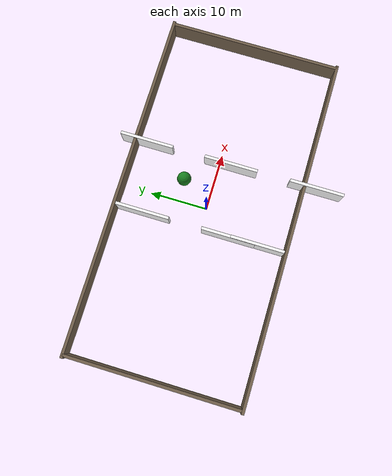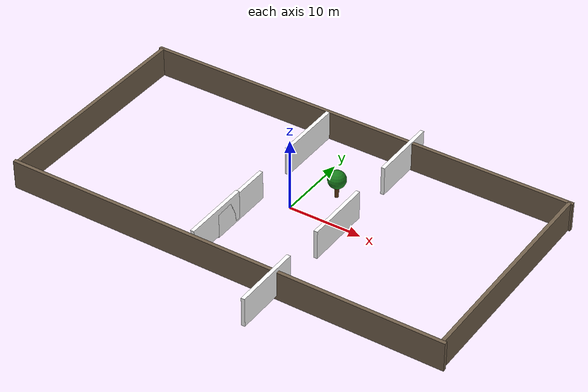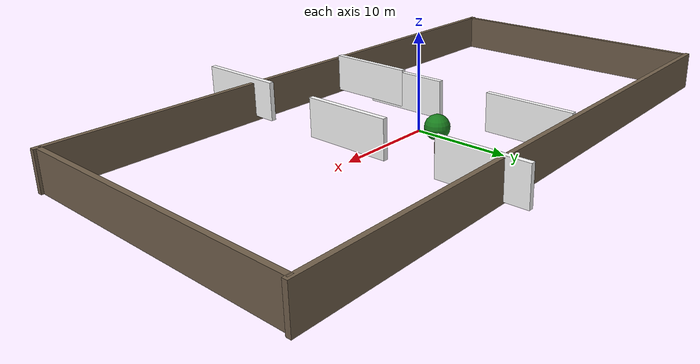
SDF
<sdf version="1.8">
 <world name="custom_terrain_world">
  <light name="sun" type="directional">
   <cast_shadows>0</cast_shadows>
   <pose>0 0 100 0 -0 0</pose>
   <diffuse>0.8 0.8 0.8 1</diffuse>
   <specular>0.4 0.4 0.4 1</specular>
   <direction>-0.5 0.1 -0.9</direction>
  </light>
  <gravity>0 0 -9.81</gravity>
  <magnetic_field>6e-06 2.3e-05 -4.2e-05</magnetic_field>
  <atmosphere type="adiabatic"/>
  <physics name="default_physics" type="ignored">
   <max_step_size>0.01</max_step_size>
   <real_time_factor>1</real_time_factor>
   <real_time_update_rate>100</real_time_update_rate>
  </physics>
  <scene>
   <ambient>0.7 0.7 0.7 1</ambient>
   <background>0.6 0.8 1.0 1</background>
   <shadows>0</shadows>
   <grid>0</grid>
  </scene>
  <spherical_coordinates>
   <latitude_deg>0.0</latitude_deg>
   <longitude_deg>0.0</longitude_deg>
   <elevation>10.0</elevation>
   <heading_deg>0</heading_deg>
   <surface_model>EARTH_WGS84</surface_model>
  </spherical_coordinates>
  <include><uri>model://map_perimeter</uri><name>map_perimeter</name></include>
  <include>
   <uri>model://forest_wall</uri>
   <name>forest_wall_1</name>
   <pose>-4 10 0.14 0 0 1.570796</pose>
  </include>
  <include>
   <uri>model://forest_wall</uri>
   <name>forest_wall_2</name>
   <pose>-4 -5 0.123 0 0 1.570796</pose>
  </include>
  <include>
   <uri>model://forest_wall</uri>
   <name>forest_wall_3</name>
   <pose>-4 -10 0.344 0 0 1.570796</pose>
  </include>
  <include>
   <uri>model://forest_wall</uri>
   <name>forest_wall_4</name>
   <pose>8 13 0.181 0 0 1.570796</pose>
  </include>
  <include>
   <uri>model://forest_wall</uri>
   <name>forest_wall_5</name>
   <pose>8 -2 0.248 0 0 1.570796</pose>
  </include>
  <include>
   <uri>model://forest_wall</uri>
   <name>forest_wall_6</name>
   <pose>8 -17 0.525 0 0 1.570796</pose>
  </include>
  <include><uri>model://simple_tree</uri><name>oak8</name><pose>3.54698 5 0.061 0 0 0.1</pose></include>
 </world>
</sdf>

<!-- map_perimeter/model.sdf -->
<sdf version="1.7">
  <model name="map_perimeter">
    <static>true</static>

    <!-- West wall: x = -30, spans full Y -->
    <link name="west">
      <collision name="collision">
        <pose>0 0 2 0 0 0</pose>
        <geometry>
          <box>
            <size>0.5 30 4</size>
          </box>
        </geometry>
      </collision>
      <visual name="visual">
        <pose>0 0 2 0 0 0</pose>
        <cast_shadows>false</cast_shadows>
        <geometry>
          <box>
            <size>0.5 30 4</size>
          </box>
        </geometry>
        <material>
          <ambient>0.35 0.30 0.25 1</ambient>
          <diffuse>0.45 0.38 0.30 1</diffuse>
        </material>
      </visual>
      <pose>-30 0 0 0 0 0</pose>
    </link>

    <!-- East wall: x = +30, spans full Y -->
    <link name="east">
      <collision name="collision">
        <pose>0 0 2 0 0 0</pose>
        <geometry>
          <box>
            <size>0.5 30 4</size>
          </box>
        </geometry>
      </collision>
      <visual name="visual">
        <pose>0 0 2 0 0 0</pose>
        <cast_shadows>false</cast_shadows>
        <geometry>
          <box>
            <size>0.5 30 4</size>
          </box>
        </geometry>
        <material>
          <ambient>0.35 0.30 0.25 1</ambient>
          <diffuse>0.45 0.38 0.30 1</diffuse>
        </material>
      </visual>
      <pose>30 0 0 0 0 0</pose>
    </link>

    <!-- South wall: y = -15; 61 m long so corners seal against east/west -->
    <link name="south">
      <collision name="collision">
        <pose>0 0 2 0 0 0</pose>
        <geometry>
          <box>
            <size>61 0.5 4</size>
          </box>
        </geometry>
      </collision>
      <visual name="visual">
        <pose>0 0 2 0 0 0</pose>
        <cast_shadows>false</cast_shadows>
        <geometry>
          <box>
            <size>61 0.5 4</size>
          </box>
        </geometry>
        <material>
          <ambient>0.35 0.30 0.25 1</ambient>
          <diffuse>0.45 0.38 0.30 1</diffuse>
        </material>
      </visual>
      <pose>0 -15 0 0 0 0</pose>
    </link>

    <!-- North wall: y = +15 -->
    <link name="north">
      <collision name="collision">
        <pose>0 0 2 0 0 0</pose>
        <geometry>
          <box>
            <size>61 0.5 4</size>
          </box>
        </geometry>
      </collision>
      <visual name="visual">
        <pose>0 0 2 0 0 0</pose>
        <cast_shadows>false</cast_shadows>
        <geometry>
          <box>
            <size>61 0.5 4</size>
          </box>
        </geometry>
        <material>
          <ambient>0.35 0.30 0.25 1</ambient>
          <diffuse>0.45 0.38 0.30 1</diffuse>
        </material>
      </visual>
      <pose>0 15 0 0 0 0</pose>
    </link>
  </model>
</sdf>

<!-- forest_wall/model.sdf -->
<sdf version="1.7">

  <model name="forest_wall">
    <static>true</static>

    <link name="link">

      <collision name="collision">
        <pose>0 0 2 0 0 0</pose>
        <geometry>
          <box>
            <size>9.32 0.5 4</size>
          </box>
        </geometry>
      </collision>

      <visual name="visual">
        <pose>0 0 2 0 0 0</pose>
        <cast_shadows>false</cast_shadows>

        <geometry>
          <box>
            <size>9.32 0.5 4</size>
          </box>
        </geometry>

        <material>
          <ambient>1 1 1 1</ambient>
          <diffuse>1 1 1 1</diffuse>

          <pbr>
            <metal>
              <albedo_map>materials/textures/forest_wall.png</albedo_map>
              <roughness>1.0</roughness>
              <metalness>0.0</metalness>
            </metal>
          </pbr>
        </material>

      </visual>

    </link>

  </model>

</sdf>

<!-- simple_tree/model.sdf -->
<sdf version="1.7">
  <model name="simple_tree">
    <static>true</static>
    <link name="link">
      <collision name="trunk">
        <pose>0 0 1.0 0 0 0</pose>
        <geometry>
          <cylinder>
            <radius>0.25</radius>
            <length>2.0</length>
          </cylinder>
        </geometry>
      </collision>
      <collision name="canopy">
        <pose>0 0 2.6 0 0 0</pose>
        <geometry>
          <sphere>
            <radius>1.2</radius>
          </sphere>
        </geometry>
      </collision>
      <visual name="trunk">
        <pose>0 0 1.0 0 0 0</pose>
        <cast_shadows>false</cast_shadows>
        <geometry>
          <cylinder>
            <radius>0.25</radius>
            <length>2.0</length>
          </cylinder>
        </geometry>
        <material>
          <ambient>0.30 0.18 0.08 1</ambient>
          <diffuse>0.40 0.24 0.10 1</diffuse>
        </material>
      </visual>
      <visual name="canopy">
        <pose>0 0 2.6 0 0 0</pose>
        <cast_shadows>false</cast_shadows>
        <geometry>
          <sphere>
            <radius>1.2</radius>
          </sphere>
        </geometry>
        <material>
          <ambient>0.05 0.35 0.08 1</ambient>
          <diffuse>0.10 0.50 0.12 1</diffuse>
        </material>
      </visual>
    </link>
  </model>
</sdf>
